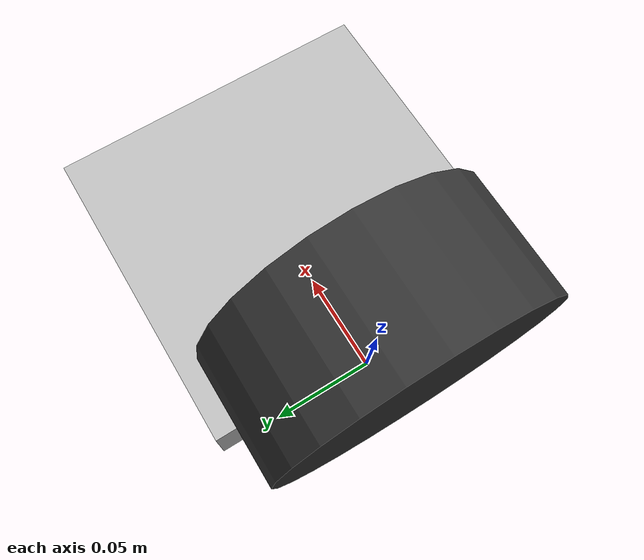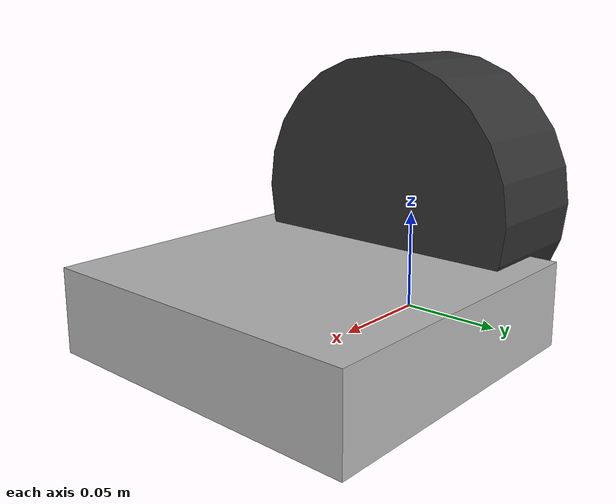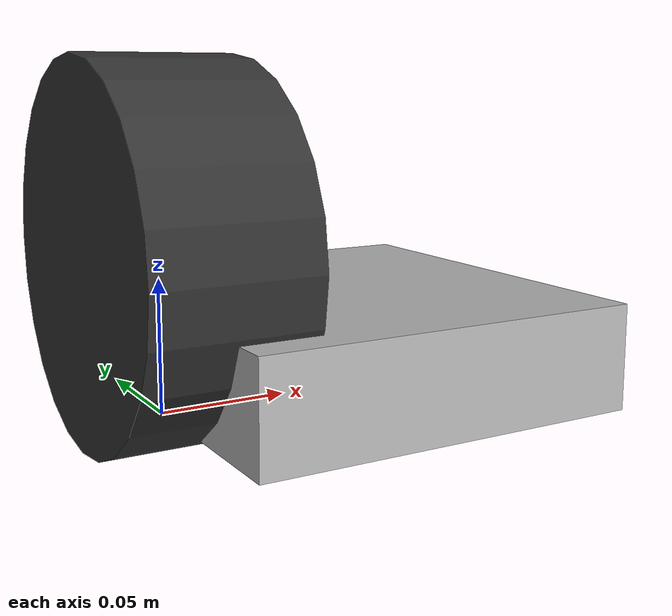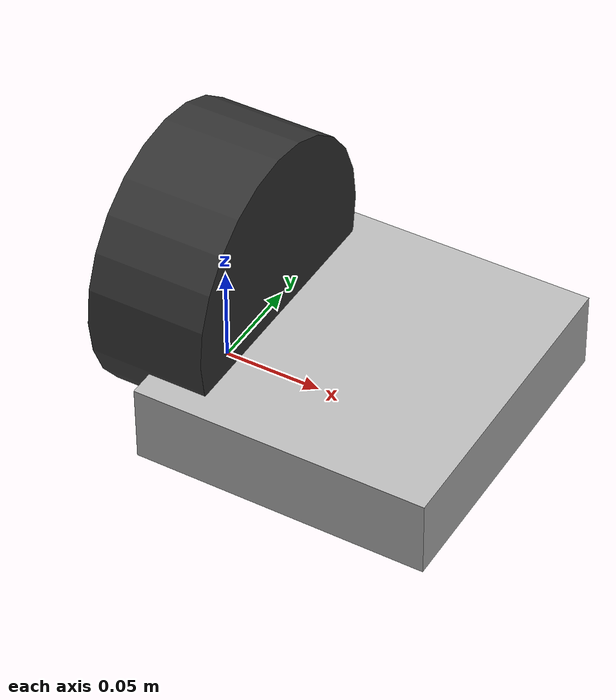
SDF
<sdf version="1.6">
    <model name="car_pulley">
        <allow_auto_disable>true</allow_auto_disable>
        <link name="plate">
            <kinematic>true</kinematic>
            <pose>0.075 0 0.02 0 0 0</pose>
            <visual name="visual">
                <geometry>
                    <box>
                        <size>0.15 0.16 0.04</size>
                    </box>
                </geometry>
            </visual>
            <collision name="collision">
                <geometry>
                    <box>
                        <size>0.15 0.16 0.04</size>
                    </box>
                </geometry>
            </collision>
        </link>
        <link name="pulley">
            <kinematic>true</kinematic>
            <pose>0 0 0.06 0 1.570796 0</pose>
            <visual name="visual">
                <geometry>
                    <cylinder>
                        <radius>0.07</radius>
                        <length>0.06</length>
                    </cylinder>
                </geometry>
                <material>
                    <ambient>0.2 0.2 0.2 1.0</ambient>
                    <diffuse>0.2 0.2 0.2 1.0</diffuse>
                </material>
            </visual>
            <collision name="collision">
                <geometry>
                    <cylinder>
                        <radius>0.07</radius>
                        <length>0.06</length>
                    </cylinder>
                </geometry>
            </collision>
        </link>
    </model>
</sdf>
